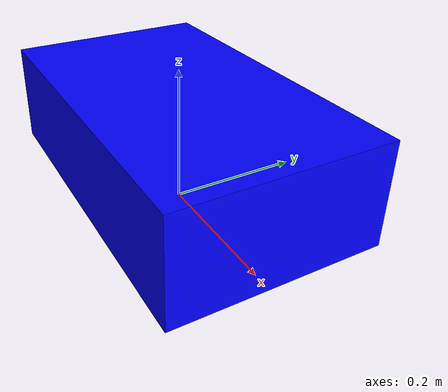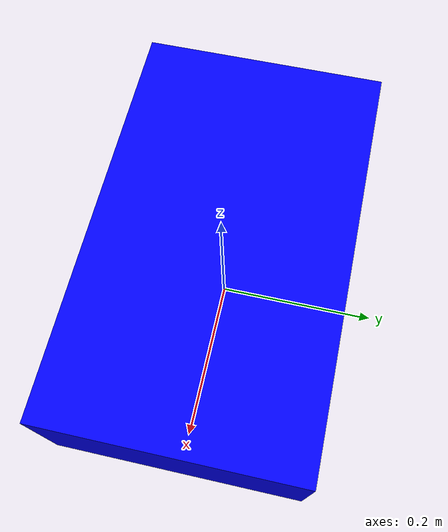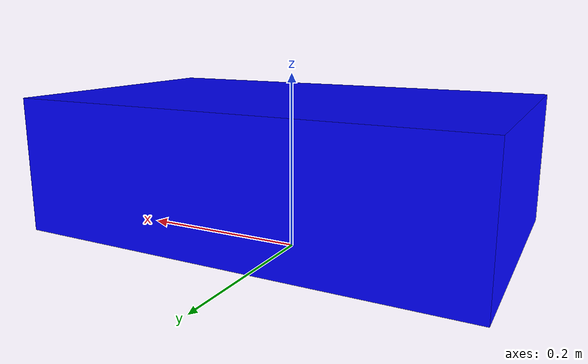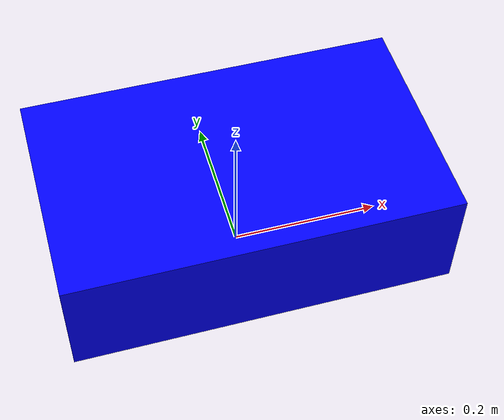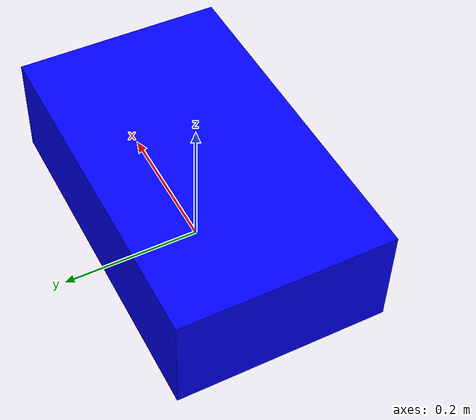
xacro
<?xml version="1.0"?>
<robot xmlns:xacro="http://www.ros.org/wiki/xacro">

    <xacro:macro name="inertial_box" params="mass x y z *origin">
        <inertial>
            <xacro:insert_block name="origin"/>
            <mass value="${mass}" />
            <inertia ixx="${(1/12) * mass * (y*y+z*z)}" ixy="0.0" ixz="0.0"
                    iyy="${(1/12) * mass * (x*x+z*z)}" iyz="0.0"
                    izz="${(1/12) * mass * (x*x+y*y)}" />
        </inertial>
    </xacro:macro>

    <xacro:macro name="inertial_cylinder" params="mass length radius *origin">
        <inertial>
            <xacro:insert_block name="origin"/>
            <mass value="${mass}" />
            <inertia ixx="${(1/12) * mass * (3*radius*radius + length*length)}" ixy="0.0" ixz="0.0"
                    iyy="${(1/12) * mass * (3*radius*radius + length*length)}" iyz="0.0"
                    izz="${(1/2) * mass * (radius*radius)}" />
        </inertial>
    </xacro:macro>

    <xacro:property name="chassis_length" value="0.5"/>
    <xacro:property name="chassis_width" value="0.3"/>
    <xacro:property name="chassis_height" value="0.15"/>

    <link name="base_link"></link>

    <joint name="chassis_joint" type="fixed">
        <parent link="base_link"/>
        <child link="chassis"/>
        <origin xyz="0 0 0.1"/>
    </joint>

    <link name="chassis">
        <visual>
            <geometry>
                <box size="${chassis_length} ${chassis_width} ${chassis_height}"/>
            </geometry>
            <material name="blue"><color rgba="0 0 1 1"/></material>
        </visual>
        <collision>
            <geometry>
                <box size="${chassis_length} ${chassis_width} ${chassis_height}"/>
            </geometry>
        </collision>
        <xacro:inertial_box mass="2.0" x="${chassis_length}" y="${chassis_width}" z="${chassis_height}">
            <origin xyz="0 0 0" rpy="0 0 0"/>
        </xacro:inertial_box>
    </link>
</robot>
